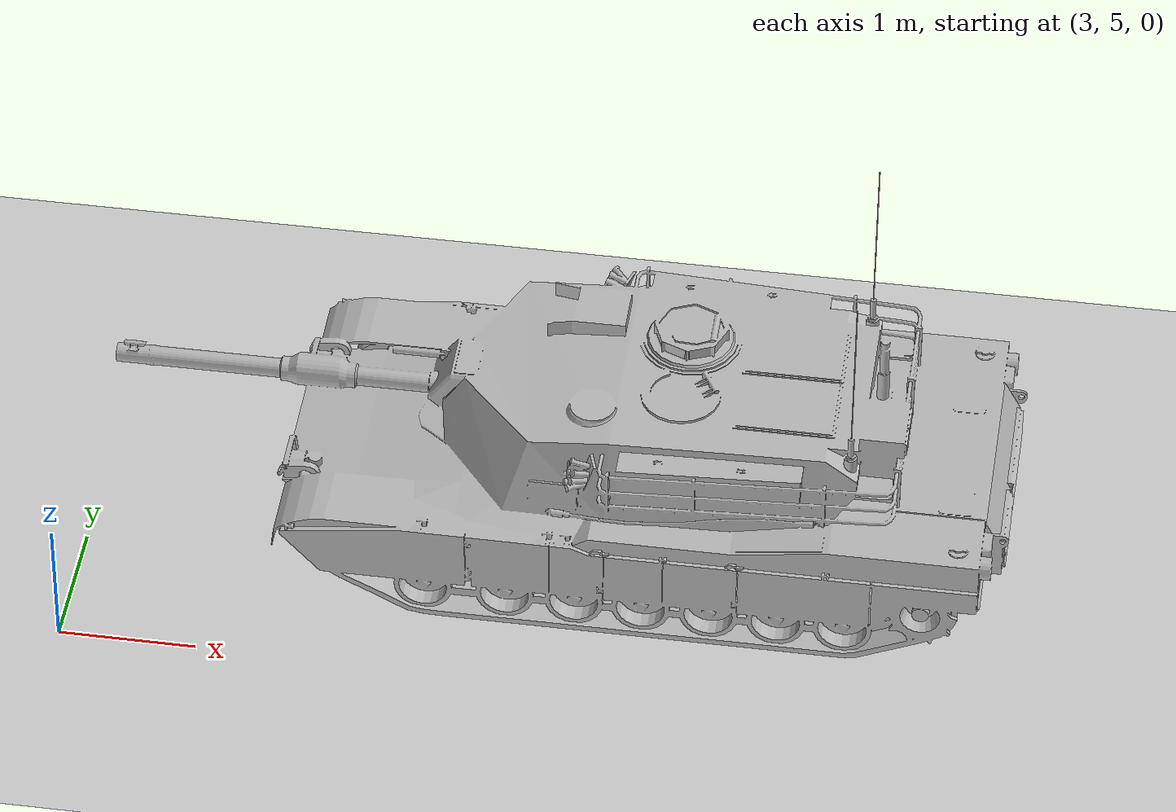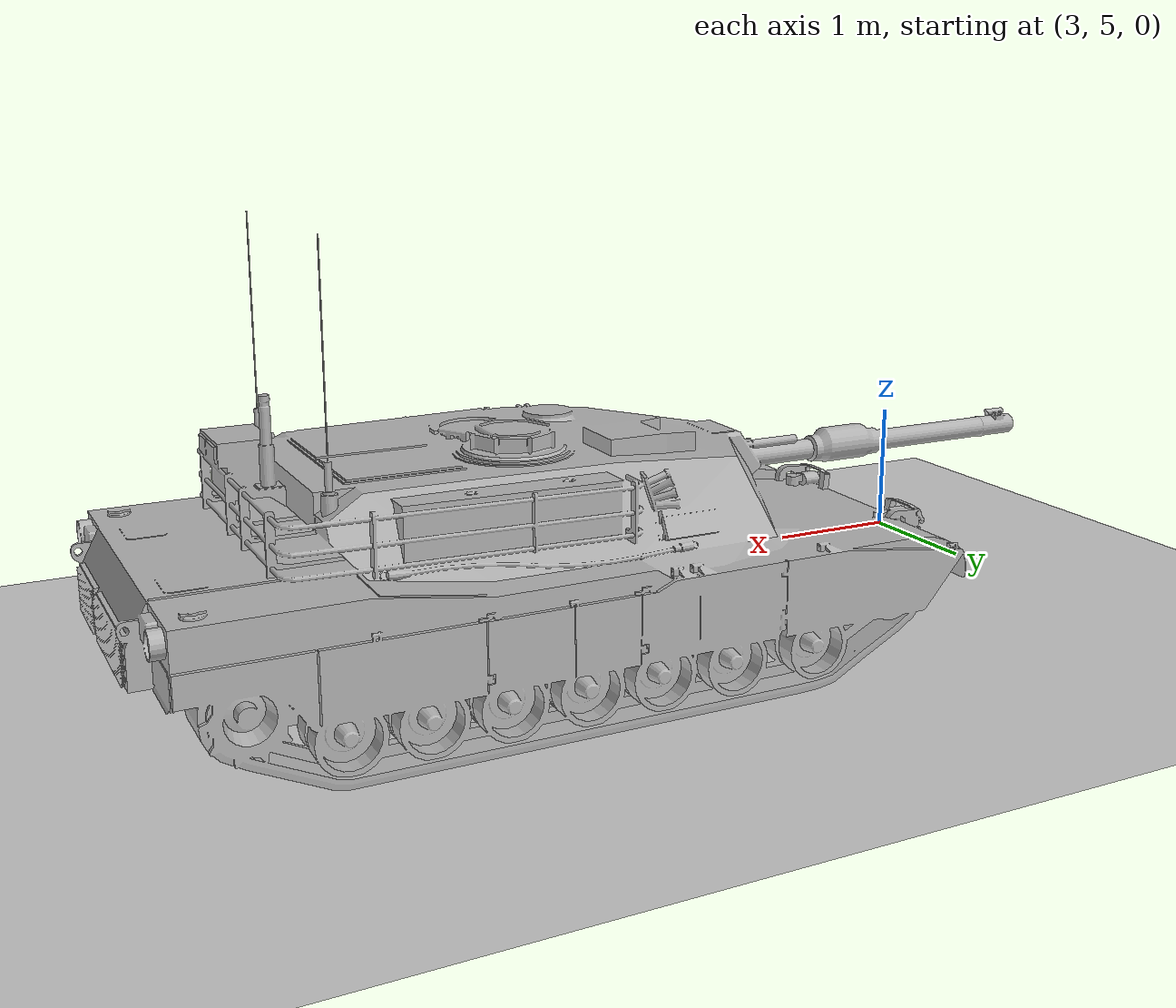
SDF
<?xml version="1.0" encoding="UTF-8"?>
<sdf version="1.9">
  <world name="tank">
    <physics type="ode">
      <max_step_size>0.002</max_step_size>
      <real_time_factor>1.0</real_time_factor>
      <real_time_update_rate>500</real_time_update_rate>
    </physics>
    <gravity>0 0 -9.8</gravity>
    <magnetic_field>6e-06 2.3e-05 -4.2e-05</magnetic_field>
    <atmosphere type="adiabatic"/>
    <scene>
      <grid>false</grid>
      <ambient>0.4 0.4 0.4 1</ambient>
      <background>0.7 0.7 0.7 1</background>
      <shadows>false</shadows>
    </scene>
    <model name="ground_plane">
      <static>true</static>
      <link name="link">
        <collision name="collision">
          <geometry>
            <plane>
              <normal>0 0 1</normal>
              <size>1 1</size>
            </plane>
          </geometry>
          <surface>
            <friction>
              <ode>
                <mu>2</mu>
                <mu2>2</mu2>
              </ode>
            </friction>
            <bounce/>
            <contact>
              <collide_bitmask>65535</collide_bitmask>
              <ode>
                <min_depth>0.005</min_depth>
                <kp>1e8</kp>
              </ode>
            </contact>
          </surface>
        </collision>
        <visual name="visual">
          <geometry>
            <plane>
              <normal>0 0 1</normal>
              <size>500 500</size>
            </plane>
          </geometry>
          <material>
            <ambient>0.8 0.8 0.8 1</ambient>
            <diffuse>0.8 0.8 0.8 1</diffuse>
            <specular>0.8 0.8 0.8 1</specular>
          </material>
        </visual>
        <pose>0 0 0 0 -0 0</pose>
        <inertial>
          <pose>0 0 0 0 -0 0</pose>
          <mass>1</mass>
          <inertia>
            <ixx>1</ixx>
            <ixy>0</ixy>
            <ixz>0</ixz>
            <iyy>1</iyy>
            <iyz>0</iyz>
            <izz>1</izz>
          </inertia>
        </inertial>
        <enable_wind>false</enable_wind>
      </link>
      <pose>0 0 0 0 -0 0</pose>
      <self_collide>false</self_collide>
    </model>
    <light name="sunUTC" type="directional">
      <pose>0 0 500 0 -0 0</pose>
      <cast_shadows>false</cast_shadows>
      <intensity>1</intensity>
      <direction>0.001 0.625 -0.78</direction>
      <diffuse>0.904 0.904 0.904 1</diffuse>
      <specular>0.271 0.271 0.271 1</specular>
      <attenuation>
        <range>2000</range>
        <linear>0</linear>
        <constant>1</constant>
        <quadratic>0</quadratic>
      </attenuation>
      <spot>
        <inner_angle>0</inner_angle>
        <outer_angle>0</outer_angle>
        <falloff>0</falloff>
      </spot>
    </light>
    <spherical_coordinates>
      <surface_model>EARTH_WGS84</surface_model>
      <world_frame_orientation>ENU</world_frame_orientation>
      <latitude_deg>47.397971057728974</latitude_deg>
      <longitude_deg> 8.546163739800146</longitude_deg>
      <elevation>0</elevation>
    </spherical_coordinates>

    <include>
      <uri>model://m1-abrams</uri>
      <pose>8 8 -0.2 1.57 0 0</pose>
    </include>
  </world>
</sdf>

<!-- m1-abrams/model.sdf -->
<sdf version="1.9">
  <model name="m1-abrams">
    <static>true</static>
    <link name="body">

      <visual name="visual">
        <pose>0 0 -0.2 0 0 0</pose>
        <geometry>
          <mesh>
            <uri>model://m1-abrams/meshes/abrams.obj</uri>
            <scale>1 1 1</scale>
          </mesh>
        </geometry>
      </visual>

      <collision name="hull_collision">
        <pose>0 0 0.8 0 0 0</pose>
        <geometry><box><size>6.6 3.0 1.4</size></box></geometry>
      </collision>
      <collision name="turret_collision">
        <pose>-0.5 0 1.9 0 0 0</pose>
        <geometry><box><size>3.4 2.6 0.9</size></box></geometry>
      </collision>

    </link>
  </model>
</sdf>
